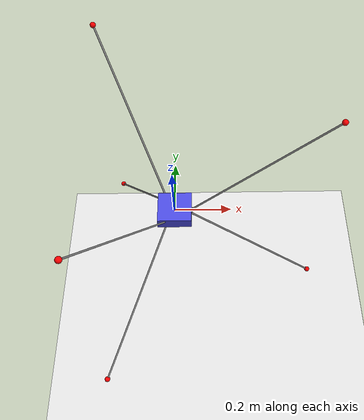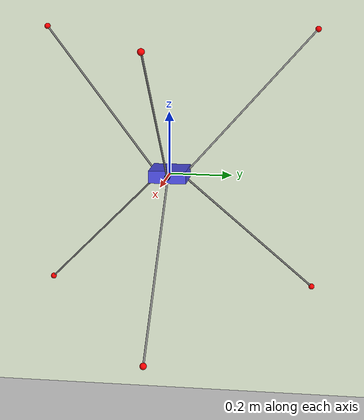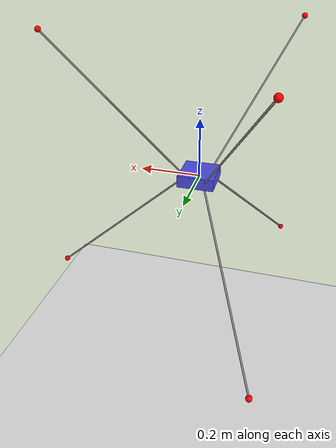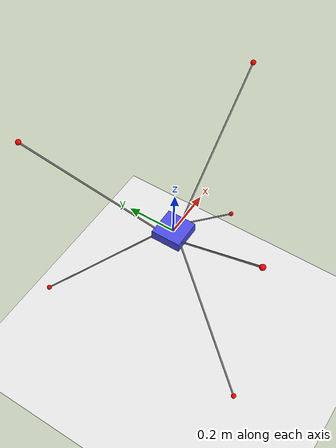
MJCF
<mujoco model="cable_robot_5dof">
  <option timestep="0.0002" gravity="0 0 -9.81" integrator="RK4"/>
  <size njmax="2000" nconmax="2000"/>
  <default>
    <joint damping="0.5" limited="false"/>
    <geom density="500" friction="1 0.5 0.1" rgba="0.7 0.7 0.7 1"/>
  </default>
  <worldbody>
    <geom type="plane" pos="0 0 -1.0" size="5 5 0.1" rgba="0.9 0.9 0.9 1"/>
    <site name="a1" pos=" 0.530678  0.000000  0.445777" size="0.01" rgba="1 0 0 1"/>
    <site name="a2" pos=" 0.530678  0.000000 -0.445777" size="0.01" rgba="1 0 0 1"/>
    <site name="a3" pos="-0.265339  0.459581  0.445777" size="0.01" rgba="1 0 0 1"/>
    <site name="a4" pos="-0.265339  0.459581 -0.445777" size="0.01" rgba="1 0 0 1"/>
    <site name="a5" pos="-0.265339 -0.459581  0.445777" size="0.01" rgba="1 0 0 1"/>
    <site name="a6" pos="-0.265339 -0.459581 -0.445777" size="0.01" rgba="1 0 0 1"/>
    <body name="platform" pos="0 0 0">
      <!-- 5 DOF: x,y,z translations + roll (x) + pitch (y). Yaw fixed. -->
      <joint name="jx" type="slide" axis="1 0 0"/>
      <joint name="jy" type="slide" axis="0 1 0"/>
      <joint name="jz" type="slide" axis="0 0 1"/>
      <joint name="jroll" type="hinge" axis="1 0 0"/>
      <joint name="jpitch" type="hinge" axis="0 1 0"/>
      <geom name="platform_geom" type="box" size="0.06 0.06 0.02" rgba="0.3 0.3 0.9 1"/>
      <inertial pos="0 0 0" mass="0.108" diaginertia="0.000152 0.000152 0.000254"/>
      <site name="p1" pos=" 0.057905  0.000000  0.000000" size="0.01" rgba="0 0 0 1"/>
      <site name="p2" pos=" 0.049384  0.000000 -0.011149" size="0.01" rgba="0 0 0 1"/>
      <site name="p3" pos="-0.028952  0.050147  0.000000" size="0.01" rgba="0 0 0 1"/>
      <site name="p4" pos="-0.024692  0.042768 -0.011149" size="0.01" rgba="0 0 0 1"/>
      <site name="p5" pos="-0.028952 -0.050147  0.000000" size="0.01" rgba="0 0 0 1"/>
      <site name="p6" pos="-0.024692 -0.042768 -0.011149" size="0.01" rgba="0 0 0 1"/>
    </body>
  </worldbody>
  <tendon>
    <spatial name="cable1" limited="false" range="0 10">
      <site site="a1"/>
      <site site="p1"/>
    </spatial>
    <spatial name="cable2" limited="false" range="0 10">
      <site site="a2"/>
      <site site="p2"/>
    </spatial>
    <spatial name="cable3" limited="false" range="0 10">
      <site site="a3"/>
      <site site="p3"/>
    </spatial>
    <spatial name="cable4" limited="false" range="0 10">
      <site site="a4"/>
      <site site="p4"/>
    </spatial>
    <spatial name="cable5" limited="false" range="0 10">
      <site site="a5"/>
      <site site="p5"/>
    </spatial>
    <spatial name="cable6" limited="false" range="0 10">
      <site site="a6"/>
      <site site="p6"/>
    </spatial>
  </tendon>
  <actuator>
    <motor name="m1" tendon="cable1" gear="-1" ctrllimited="true" ctrlrange="0 150"/>
    <motor name="m2" tendon="cable2" gear="-1" ctrllimited="true" ctrlrange="0 150"/>
    <motor name="m3" tendon="cable3" gear="-1" ctrllimited="true" ctrlrange="0 150"/>
    <motor name="m4" tendon="cable4" gear="-1" ctrllimited="true" ctrlrange="0 150"/>
    <motor name="m5" tendon="cable5" gear="-1" ctrllimited="true" ctrlrange="0 150"/>
    <motor name="m6" tendon="cable6" gear="-1" ctrllimited="true" ctrlrange="0 150"/>
  </actuator>
</mujoco>
